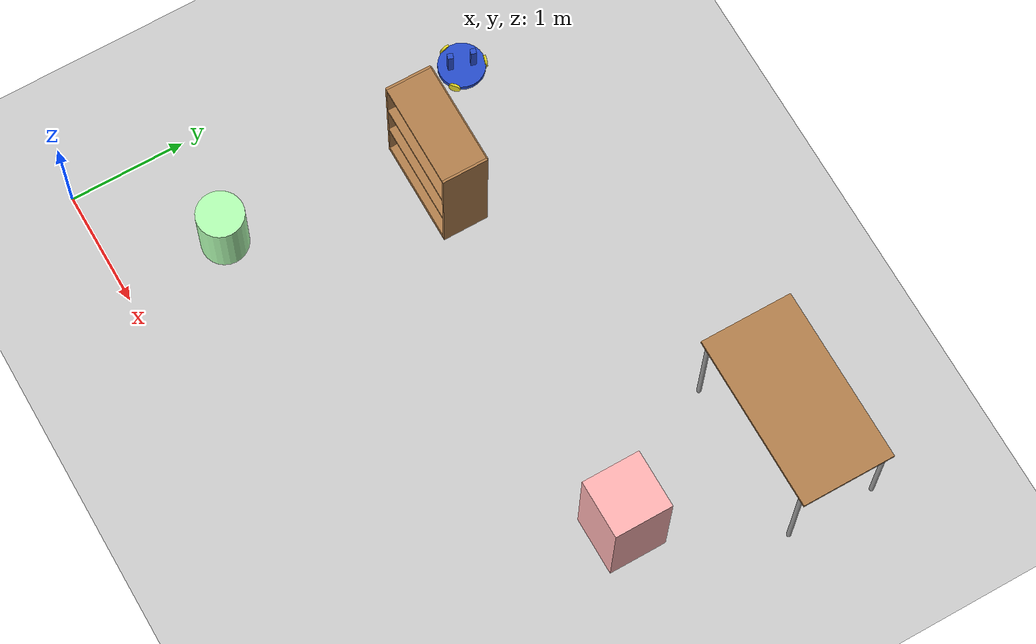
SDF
<sdf version="1.6">
 <world name="default">
  <model name="ground_plane">
   <static>1</static>
   <link name="link">
    <collision name="collision">
     <geometry><plane><normal>0 0 1</normal><size>100 100</size></plane></geometry>
     <surface><friction><ode><mu>100</mu><mu2>50</mu2></ode></friction></surface>
    </collision>
    <visual name="visual">
     <cast_shadows>0</cast_shadows>
     <geometry><plane><normal>0 0 1</normal><size>100 100</size></plane></geometry>
     <material>
      <script><uri>file://media/materials/scripts/gazebo.material</uri><name>Gazebo/Grey</name></script>
     </material>
    </visual>
   </link>
  </model>
  <model name="bookshelf">
   <static>1</static>
   <link name="link">
    <inertial><mass>1</mass></inertial>
    <collision name="back">
     <pose>0 0.005 0.6 0 -0 0</pose>
     <geometry><box><size>0.9 0.01 1.2</size></box></geometry>
    </collision>
    <visual name="visual1">
     <pose>0 0.005 0.6 0 -0 0</pose>
     <geometry><box><size>0.9 0.01 1.2</size></box></geometry>
     <material>
      <script><uri>file://media/materials/scripts/gazebo.material</uri><name>Gazebo/Wood</name></script>
     </material>
    </visual>
    <collision name="left_side">
     <pose>0.45 -0.195 0.6 0 -0 0</pose>
     <geometry><box><size>0.02 0.4 1.2</size></box></geometry>
    </collision>
    <visual name="visual2">
     <pose>0.45 -0.195 0.6 0 -0 0</pose>
     <geometry><box><size>0.02 0.4 1.2</size></box></geometry>
     <material>
      <script><uri>file://media/materials/scripts/gazebo.material</uri><name>Gazebo/Wood</name></script>
     </material>
    </visual>
    <collision name="right_side">
     <pose>-0.45 -0.195 0.6 0 -0 0</pose>
     <geometry><box><size>0.02 0.4 1.2</size></box></geometry>
    </collision>
    <visual name="visual3">
     <pose>-0.45 -0.195 0.6 0 -0 0</pose>
     <geometry><box><size>0.02 0.4 1.2</size></box></geometry>
     <material>
      <script><uri>file://media/materials/scripts/gazebo.material</uri><name>Gazebo/Wood</name></script>
     </material>
    </visual>
    <collision name="bottom">
     <pose>0 -0.195 0.03 0 -0 0</pose>
     <geometry><box><size>0.88 0.4 0.06</size></box></geometry>
    </collision>
    <visual name="visual4">
     <pose>0 -0.195 0.03 0 -0 0</pose>
     <geometry><box><size>0.88 0.4 0.06</size></box></geometry>
     <material>
      <script><uri>file://media/materials/scripts/gazebo.material</uri><name>Gazebo/Wood</name></script>
     </material>
    </visual>
    <collision name="top">
     <pose>0 -0.195 1.19 0 -0 0</pose>
     <geometry><box><size>0.88 0.4 0.02</size></box></geometry>
    </collision>
    <visual name="visual5">
     <pose>0 -0.195 1.19 0 -0 0</pose>
     <geometry><box><size>0.88 0.4 0.02</size></box></geometry>
     <material>
      <script><uri>file://media/materials/scripts/gazebo.material</uri><name>Gazebo/Wood</name></script>
     </material>
    </visual>
    <collision name="low_shelf">
     <pose>0 -0.195 0.43 0 -0 0</pose>
     <geometry><box><size>0.88 0.4 0.02</size></box></geometry>
    </collision>
    <visual name="visual6">
     <pose>0 -0.195 0.43 0 -0 0</pose>
     <geometry><box><size>0.88 0.4 0.02</size></box></geometry>
     <material>
      <script><uri>file://media/materials/scripts/gazebo.material</uri><name>Gazebo/Wood</name></script>
     </material>
    </visual>
    <collision name="high_shelf">
     <pose>0 -0.195 0.8 0 -0 0</pose>
     <geometry><box><size>0.88 0.4 0.02</size></box></geometry>
    </collision>
    <visual name="visual7">
     <pose>0 -0.195 0.8 0 -0 0</pose>
     <geometry><box><size>0.88 0.4 0.02</size></box></geometry>
     <material>
      <script><uri>file://media/materials/scripts/gazebo.material</uri><name>Gazebo/Wood</name></script>
     </material>
    </visual>
   </link>
   <pose>1.32856 2.84025 0 0 -0 0</pose>
  </model>
  <model name="table">
   <static>1</static>
   <link name="link">
    <collision name="surface">
     <pose>0 0 1 0 -0 0</pose>
     <geometry><box><size>1.5 0.8 0.03</size></box></geometry>
     <surface><friction><ode><mu>0.6</mu><mu2>0.6</mu2></ode></friction></surface>
    </collision>
    <visual name="visual1">
     <pose>0 0 1 0 -0 0</pose>
     <geometry><box><size>1.5 0.8 0.03</size></box></geometry>
     <material>
      <script><uri>file://media/materials/scripts/gazebo.material</uri><name>Gazebo/Wood</name></script>
     </material>
    </visual>
    <collision name="front_left_leg">
     <pose>0.68 0.38 0.5 0 -0 0</pose>
     <geometry><cylinder><radius>0.02</radius><length>1</length></cylinder></geometry>
    </collision>
    <visual name="front_left_leg">
     <pose>0.68 0.38 0.5 0 -0 0</pose>
     <geometry><cylinder><radius>0.02</radius><length>1</length></cylinder></geometry>
     <material>
      <script><uri>file://media/materials/scripts/gazebo.material</uri><name>Gazebo/Grey</name></script>
     </material>
    </visual>
    <collision name="front_right_leg">
     <pose>0.68 -0.38 0.5 0 -0 0</pose>
     <geometry><cylinder><radius>0.02</radius><length>1</length></cylinder></geometry>
    </collision>
    <visual name="front_right_leg">
     <pose>0.68 -0.38 0.5 0 -0 0</pose>
     <geometry><cylinder><radius>0.02</radius><length>1</length></cylinder></geometry>
     <material>
      <script><uri>file://media/materials/scripts/gazebo.material</uri><name>Gazebo/Grey</name></script>
     </material>
    </visual>
    <collision name="back_right_leg">
     <pose>-0.68 -0.38 0.5 0 -0 0</pose>
     <geometry><cylinder><radius>0.02</radius><length>1</length></cylinder></geometry>
    </collision>
    <visual name="back_right_leg">
     <pose>-0.68 -0.38 0.5 0 -0 0</pose>
     <geometry><cylinder><radius>0.02</radius><length>1</length></cylinder></geometry>
     <material>
      <script><uri>file://media/materials/scripts/gazebo.material</uri><name>Gazebo/Grey</name></script>
     </material>
    </visual>
    <collision name="back_left_leg">
     <pose>-0.68 0.38 0.5 0 -0 0</pose>
     <geometry><cylinder><radius>0.02</radius><length>1</length></cylinder></geometry>
    </collision>
    <visual name="back_left_leg">
     <pose>-0.68 0.38 0.5 0 -0 0</pose>
     <geometry><cylinder><radius>0.02</radius><length>1</length></cylinder></geometry>
     <material>
      <script><uri>file://media/materials/scripts/gazebo.material</uri><name>Gazebo/Grey</name></script>
     </material>
    </visual>
   </link>
   <pose>4.5763 3.95533 0 0 -0 0</pose>
  </model>
  <model name="unit_cylinder">
   <link name="link">
    <inertial>
     <mass>100</mass>
     <inertia><ixx>0.145833</ixx><ixy>0</ixy><ixz>0</ixz><iyy>0.145833</iyy><iyz>0</iyz><izz>0.125</izz></inertia>
    </inertial>
    <visual name="visual">
     <geometry><cylinder><radius>0.2</radius><length>0.6</length></cylinder></geometry>
     <material>
      <script><name>Gazebo/Grey</name><uri>file://media/materials/scripts/gazebo.material</uri></script>
      <shader type="pixel"><normal_map>__default__</normal_map></shader>
      <ambient>0.3 1 0.3 1</ambient>
      <diffuse>0.7 1 0.7 1</diffuse>
      <specular>0.01 1 0.01 1</specular>
      <emissive>0 1 0 1</emissive>
     </material>
    </visual>
    <collision name="collision">
     <geometry><cylinder><radius>0.2</radius><length>0.6</length></cylinder></geometry>
     <surface>
      <friction>
       <ode><mu>1</mu><mu2>1</mu2><fdir1>0 0 0</fdir1><slip1>0</slip1><slip2>0</slip2></ode>
       <torsional>
        <coefficient>1</coefficient>
        <patch_radius>0</patch_radius>
        <surface_radius>0</surface_radius>
        <use_patch_radius>1</use_patch_radius>
        <ode><slip>0</slip></ode>
       </torsional>
      </friction>
      <bounce><restitution_coefficient>0</restitution_coefficient><threshold>1e+06</threshold></bounce>
      <contact>
       <collide_without_contact>0</collide_without_contact>
       <collide_without_contact_bitmask>1</collide_without_contact_bitmask>
       <collide_bitmask>1</collide_bitmask>
       <ode>
        <soft_cfm>0</soft_cfm>
        <soft_erp>0.2</soft_erp>
        <kp>1e+13</kp>
        <kd>1</kd>
        <max_vel>0.01</max_vel>
        <min_depth>0</min_depth>
       </ode>
       <bullet>
        <split_impulse>1</split_impulse>
        <split_impulse_penetration_threshold>-0.01</split_impulse_penetration_threshold>
        <soft_cfm>0</soft_cfm>
        <soft_erp>0.2</soft_erp>
        <kp>1e+13</kp>
        <kd>1</kd>
       </bullet>
      </contact>
     </surface>
    </collision>
   </link>
   <static>0</static>
   <pose>0.932681 0.902167 0.299996 5e-06 4e-06 0.000649</pose>
  </model>
  <model name="unit_box">
   <link name="link">
    <inertial>
     <mass>100</mass>
     <inertia>
      <ixx>0.166667</ixx>
      <ixy>0</ixy>
      <ixz>0</ixz>
      <iyy>0.166667</iyy>
      <iyz>0</iyz>
      <izz>0.166667</izz>
     </inertia>
    </inertial>
    <visual name="visual">
     <geometry><box><size>0.5 0.5 1</size></box></geometry>
     <material>
      <script><name>Gazebo/Grey</name><uri>file://media/materials/scripts/gazebo.material</uri></script>
      <shader type="pixel"><normal_map>__default__</normal_map></shader>
      <ambient>1 0.3 0.3 1</ambient>
      <diffuse>1 0.7 0.7 1</diffuse>
      <specular>1 0.01 0.01 1</specular>
      <emissive>1 0 0 1</emissive>
     </material>
    </visual>
    <collision name="collision">
     <geometry><box><size>0.5 0.5 1</size></box></geometry>
     <surface>
      <friction>
       <ode><mu>1</mu><mu2>1</mu2><fdir1>0 0 0</fdir1><slip1>0</slip1><slip2>0</slip2></ode>
       <torsional>
        <coefficient>1</coefficient>
        <patch_radius>0</patch_radius>
        <surface_radius>0</surface_radius>
        <use_patch_radius>1</use_patch_radius>
        <ode><slip>0</slip></ode>
       </torsional>
      </friction>
      <bounce><restitution_coefficient>0</restitution_coefficient><threshold>1e+06</threshold></bounce>
      <contact>
       <collide_without_contact>0</collide_without_contact>
       <collide_without_contact_bitmask>1</collide_without_contact_bitmask>
       <collide_bitmask>1</collide_bitmask>
       <ode>
        <soft_cfm>0</soft_cfm>
        <soft_erp>0.2</soft_erp>
        <kp>1e+13</kp>
        <kd>1</kd>
        <max_vel>0.01</max_vel>
        <min_depth>0</min_depth>
       </ode>
       <bullet>
        <split_impulse>1</split_impulse>
        <split_impulse_penetration_threshold>-0.01</split_impulse_penetration_threshold>
        <soft_cfm>0</soft_cfm>
        <soft_erp>0.2</soft_erp>
        <kp>1e+13</kp>
        <kd>1</kd>
       </bullet>
      </contact>
     </surface>
    </collision>
   </link>
   <static>0</static>
   <pose>4.59139 2.45538 0.5 -6e-06 -0 0.003126</pose>
  </model>
  <model name="3wheelRobotChassis">
   <link name="link_0">
    <pose>-1e-06 0 -0.0625 0 -0 0</pose>
    <inertial>
     <mass>1</mass>
     <inertia><ixx>0.145833</ixx><ixy>0</ixy><ixz>0</ixz><iyy>0.145833</iyy><iyz>0</iyz><izz>0.125</izz></inertia>
    </inertial>
    <visual name="ModelPreview_0::link_0::visual_1">
     <pose>0 0.096 0.122 0 -0 0</pose>
     <geometry><box><size>0.048 0.048 0.244</size></box></geometry>
     <material>
      <lighting>1</lighting>
      <script><uri>file://media/materials/scripts/gazebo.material</uri><name>Gazebo/Blue</name></script>
      <shader type="pixel"><normal_map>__default__</normal_map></shader>
      <ambient>0.3 0.3 1 1</ambient>
      <diffuse>0.7 0.7 1 1</diffuse>
      <specular>0.01 0.01 1 1</specular>
      <emissive>0 0 0 1</emissive>
     </material>
    </visual>
    <visual name="visual">
     <geometry><cylinder><radius>0.2</radius><length>0.048</length></cylinder></geometry>
     <material>
      <lighting>1</lighting>
      <script><uri>file://media/materials/scripts/gazebo.material</uri><name>Gazebo/Blue</name></script>
      <shader type="pixel"><normal_map>__default__</normal_map></shader>
      <ambient>0.3 0.3 1 1</ambient>
      <diffuse>0.7 0.7 1 1</diffuse>
      <specular>0.01 0.01 1 1</specular>
      <emissive>0 0 0 1</emissive>
     </material>
    </visual>
    <visual name="ModelPreview_0::link_0::visual_2">
     <pose>0 -0.096 0.122 0 -0 0</pose>
     <geometry><box><size>0.048 0.048 0.244</size></box></geometry>
     <material>
      <lighting>1</lighting>
      <script><uri>file://media/materials/scripts/gazebo.material</uri><name>Gazebo/Blue</name></script>
      <shader type="pixel"><normal_map>__default__</normal_map></shader>
      <ambient>0.3 0.3 1 1</ambient>
      <diffuse>0.7 0.7 1 1</diffuse>
      <specular>0.01 0.01 1 1</specular>
      <emissive>0 0 0 1</emissive>
     </material>
    </visual>
    <collision name="collision_1">
     <pose>0 0.096 0.122 0 -0 0</pose>
     <geometry><box><size>0.048 0.048 0.244</size></box></geometry>
     <surface>
      <friction>
       <ode><mu>1</mu><mu2>1</mu2><fdir1>0 0 0</fdir1><slip1>0</slip1><slip2>0</slip2></ode>
       <torsional>
        <coefficient>1</coefficient>
        <patch_radius>0</patch_radius>
        <surface_radius>0</surface_radius>
        <use_patch_radius>1</use_patch_radius>
        <ode><slip>0</slip></ode>
       </torsional>
      </friction>
      <bounce><restitution_coefficient>0</restitution_coefficient><threshold>1e+06</threshold></bounce>
      <contact>
       <collide_without_contact>0</collide_without_contact>
       <collide_without_contact_bitmask>1</collide_without_contact_bitmask>
       <collide_bitmask>1</collide_bitmask>
       <ode>
        <soft_cfm>0</soft_cfm>
        <soft_erp>0.2</soft_erp>
        <kp>1e+13</kp>
        <kd>1</kd>
        <max_vel>0.01</max_vel>
        <min_depth>0</min_depth>
       </ode>
       <bullet>
        <split_impulse>1</split_impulse>
        <split_impulse_penetration_threshold>-0.01</split_impulse_penetration_threshold>
        <soft_cfm>0</soft_cfm>
        <soft_erp>0.2</soft_erp>
        <kp>1e+13</kp>
        <kd>1</kd>
       </bullet>
      </contact>
     </surface>
    </collision>
    <collision name="collision">
     <geometry><cylinder><radius>0.2</radius><length>0.048</length></cylinder></geometry>
     <surface>
      <friction>
       <ode><mu>1</mu><mu2>1</mu2><fdir1>0 0 0</fdir1><slip1>0</slip1><slip2>0</slip2></ode>
       <torsional>
        <coefficient>1</coefficient>
        <patch_radius>0</patch_radius>
        <surface_radius>0</surface_radius>
        <use_patch_radius>1</use_patch_radius>
        <ode><slip>0</slip></ode>
       </torsional>
      </friction>
      <bounce><restitution_coefficient>0</restitution_coefficient><threshold>1e+06</threshold></bounce>
      <contact>
       <collide_without_contact>0</collide_without_contact>
       <collide_without_contact_bitmask>1</collide_without_contact_bitmask>
       <collide_bitmask>1</collide_bitmask>
       <ode>
        <soft_cfm>0</soft_cfm>
        <soft_erp>0.2</soft_erp>
        <kp>1e+13</kp>
        <kd>1</kd>
        <max_vel>0.01</max_vel>
        <min_depth>0</min_depth>
       </ode>
       <bullet>
        <split_impulse>1</split_impulse>
        <split_impulse_penetration_threshold>-0.01</split_impulse_penetration_threshold>
        <soft_cfm>0</soft_cfm>
        <soft_erp>0.2</soft_erp>
        <kp>1e+13</kp>
        <kd>1</kd>
       </bullet>
      </contact>
     </surface>
    </collision>
    <collision name="collision_2">
     <pose>0 -0.096 0.122 0 -0 0</pose>
     <geometry><box><size>0.048 0.048 0.244</size></box></geometry>
     <surface>
      <friction>
       <ode><mu>1</mu><mu2>1</mu2><fdir1>0 0 0</fdir1><slip1>0</slip1><slip2>0</slip2></ode>
       <torsional>
        <coefficient>1</coefficient>
        <patch_radius>0</patch_radius>
        <surface_radius>0</surface_radius>
        <use_patch_radius>1</use_patch_radius>
        <ode><slip>0</slip></ode>
       </torsional>
      </friction>
      <bounce><restitution_coefficient>0</restitution_coefficient><threshold>1e+06</threshold></bounce>
      <contact>
       <collide_without_contact>0</collide_without_contact>
       <collide_without_contact_bitmask>1</collide_without_contact_bitmask>
       <collide_bitmask>1</collide_bitmask>
       <ode>
        <soft_cfm>0</soft_cfm>
        <soft_erp>0.2</soft_erp>
        <kp>1e+13</kp>
        <kd>1</kd>
        <max_vel>0.01</max_vel>
        <min_depth>0</min_depth>
       </ode>
       <bullet>
        <split_impulse>1</split_impulse>
        <split_impulse_penetration_threshold>-0.01</split_impulse_penetration_threshold>
        <soft_cfm>0</soft_cfm>
        <soft_erp>0.2</soft_erp>
        <kp>1e+13</kp>
        <kd>1</kd>
       </bullet>
      </contact>
     </surface>
    </collision>
   </link>
   <link name="link_1">
    <pose>-1e-06 0.2 -0.0625 1.5707 -0 0</pose>
    <inertial>
     <mass>1</mass>
     <inertia><ixx>0.145833</ixx><ixy>0</ixy><ixz>0</ixz><iyy>0.145833</iyy><iyz>0</iyz><izz>0.125</izz></inertia>
    </inertial>
    <visual name="visual">
     <geometry><cylinder><radius>0.05</radius><length>0.02</length></cylinder></geometry>
     <material>
      <lighting>1</lighting>
      <script><uri>file://media/materials/scripts/gazebo.material</uri><name>Gazebo/Yellow</name></script>
      <shader type="pixel"><normal_map>__default__</normal_map></shader>
      <ambient>1 1 0.3 1</ambient>
      <diffuse>0.7 0.7 0.7 1</diffuse>
      <specular>0.01 0.01 0.01 1</specular>
      <emissive>0 0 0 1</emissive>
     </material>
    </visual>
    <collision name="collision">
     <geometry><cylinder><radius>0.05</radius><length>0.02</length></cylinder></geometry>
     <surface>
      <friction>
       <ode><mu>1</mu><mu2>1</mu2><fdir1>0 0 0</fdir1><slip1>0</slip1><slip2>0</slip2></ode>
       <torsional>
        <coefficient>1</coefficient>
        <patch_radius>0</patch_radius>
        <surface_radius>0</surface_radius>
        <use_patch_radius>1</use_patch_radius>
        <ode><slip>0</slip></ode>
       </torsional>
      </friction>
      <bounce><restitution_coefficient>0</restitution_coefficient><threshold>1e+06</threshold></bounce>
      <contact>
       <collide_without_contact>0</collide_without_contact>
       <collide_without_contact_bitmask>1</collide_without_contact_bitmask>
       <collide_bitmask>1</collide_bitmask>
       <ode>
        <soft_cfm>0</soft_cfm>
        <soft_erp>0.2</soft_erp>
        <kp>1e+13</kp>
        <kd>1</kd>
        <max_vel>0.01</max_vel>
        <min_depth>0</min_depth>
       </ode>
       <bullet>
        <split_impulse>1</split_impulse>
        <split_impulse_penetration_threshold>-0.01</split_impulse_penetration_threshold>
        <soft_cfm>0</soft_cfm>
        <soft_erp>0.2</soft_erp>
        <kp>1e+13</kp>
        <kd>1</kd>
       </bullet>
      </contact>
     </surface>
    </collision>
   </link>
   <link name="link_1_clone">
    <pose>-0.173206 -0.1 -0.0625 1.5707 -0 2.0944</pose>
    <inertial>
     <mass>1</mass>
     <inertia><ixx>0.145833</ixx><ixy>0</ixy><ixz>0</ixz><iyy>0.145833</iyy><iyz>0</iyz><izz>0.125</izz></inertia>
    </inertial>
    <visual name="visual">
     <geometry><cylinder><radius>0.05</radius><length>0.02</length></cylinder></geometry>
     <material>
      <lighting>1</lighting>
      <script><uri>file://media/materials/scripts/gazebo.material</uri><name>Gazebo/Yellow</name></script>
      <shader type="pixel"><normal_map>__default__</normal_map></shader>
      <ambient>1 1 0.3 1</ambient>
      <diffuse>0.7 0.7 0.7 1</diffuse>
      <specular>0.01 0.01 0.01 1</specular>
      <emissive>0 0 0 1</emissive>
     </material>
    </visual>
    <collision name="collision">
     <geometry><cylinder><radius>0.05</radius><length>0.02</length></cylinder></geometry>
     <surface>
      <friction>
       <ode><mu>1</mu><mu2>1</mu2><fdir1>0 0 0</fdir1><slip1>0</slip1><slip2>0</slip2></ode>
       <torsional>
        <coefficient>1</coefficient>
        <patch_radius>0</patch_radius>
        <surface_radius>0</surface_radius>
        <use_patch_radius>1</use_patch_radius>
        <ode><slip>0</slip></ode>
       </torsional>
      </friction>
      <bounce><restitution_coefficient>0</restitution_coefficient><threshold>1e+06</threshold></bounce>
      <contact>
       <collide_without_contact>0</collide_without_contact>
       <collide_without_contact_bitmask>1</collide_without_contact_bitmask>
       <collide_bitmask>1</collide_bitmask>
       <ode>
        <soft_cfm>0</soft_cfm>
        <soft_erp>0.2</soft_erp>
        <kp>1e+13</kp>
        <kd>1</kd>
        <max_vel>0.01</max_vel>
        <min_depth>0</min_depth>
       </ode>
       <bullet>
        <split_impulse>1</split_impulse>
        <split_impulse_penetration_threshold>-0.01</split_impulse_penetration_threshold>
        <soft_cfm>0</soft_cfm>
        <soft_erp>0.2</soft_erp>
        <kp>1e+13</kp>
        <kd>1</kd>
       </bullet>
      </contact>
     </surface>
    </collision>
   </link>
   <link name="link_1_clone_0">
    <pose>0.173204 -0.1 -0.0625 1.5707 -0 -2.0944</pose>
    <inertial>
     <mass>1</mass>
     <inertia><ixx>0.145833</ixx><ixy>0</ixy><ixz>0</ixz><iyy>0.145833</iyy><iyz>0</iyz><izz>0.125</izz></inertia>
    </inertial>
    <visual name="visual">
     <geometry><cylinder><radius>0.05</radius><length>0.02</length></cylinder></geometry>
     <material>
      <lighting>1</lighting>
      <script><uri>file://media/materials/scripts/gazebo.material</uri><name>Gazebo/Yellow</name></script>
      <shader type="pixel"><normal_map>__default__</normal_map></shader>
      <ambient>1 1 0.3 1</ambient>
      <diffuse>0.7 0.7 0.7 1</diffuse>
      <specular>0.01 0.01 0.01 1</specular>
      <emissive>0 0 0 1</emissive>
     </material>
    </visual>
    <collision name="collision">
     <geometry><cylinder><radius>0.05</radius><length>0.02</length></cylinder></geometry>
     <surface>
      <friction>
       <ode><mu>1</mu><mu2>1</mu2><fdir1>0 0 0</fdir1><slip1>0</slip1><slip2>0</slip2></ode>
       <torsional>
        <coefficient>1</coefficient>
        <patch_radius>0</patch_radius>
        <surface_radius>0</surface_radius>
        <use_patch_radius>1</use_patch_radius>
        <ode><slip>0</slip></ode>
       </torsional>
      </friction>
      <bounce><restitution_coefficient>0</restitution_coefficient><threshold>1e+06</threshold></bounce>
      <contact>
       <collide_without_contact>0</collide_without_contact>
       <collide_without_contact_bitmask>1</collide_without_contact_bitmask>
       <collide_bitmask>1</collide_bitmask>
       <ode>
        <soft_cfm>0</soft_cfm>
        <soft_erp>0.2</soft_erp>
        <kp>1e+13</kp>
        <kd>1</kd>
        <max_vel>0.01</max_vel>
        <min_depth>0</min_depth>
       </ode>
       <bullet>
        <split_impulse>1</split_impulse>
        <split_impulse_penetration_threshold>-0.01</split_impulse_penetration_threshold>
        <soft_cfm>0</soft_cfm>
        <soft_erp>0.2</soft_erp>
        <kp>1e+13</kp>
        <kd>1</kd>
       </bullet>
      </contact>
     </surface>
    </collision>
   </link>
   <joint name="link_0_JOINT_0_0" type="revolute">
    <parent>link_0</parent>
    <child>link_1_clone_0</child>
    <axis>
     <xyz>1 0 0</xyz>
     <use_parent_model_frame>0</use_parent_model_frame>
     <limit>
      <lower>-1.79769e+308</lower>
      <upper>1.79769e+308</upper>
      <effort>-1</effort>
      <velocity>-1</velocity>
     </limit>
     <dynamics>
      <spring_reference>0</spring_reference>
      <spring_stiffness>0</spring_stiffness>
      <damping>0</damping>
     </dynamics>
    </axis>
    <physics>
     <ode><limit><cfm>0</cfm><erp>0.2</erp></limit><suspension><cfm>0</cfm><erp>0.2</erp></suspension></ode>
    </physics>
   </joint>
   <joint name="link_0_JOINT_0" type="revolute">
    <parent>link_0</parent>
    <child>link_1</child>
    <axis>
     <xyz>0 0 1</xyz>
     <use_parent_model_frame>0</use_parent_model_frame>
     <limit>
      <lower>-1.79769e+308</lower>
      <upper>1.79769e+308</upper>
      <effort>-1</effort>
      <velocity>-1</velocity>
     </limit>
     <dynamics>
      <spring_reference>0</spring_reference>
      <spring_stiffness>0</spring_stiffness>
      <damping>0</damping>
      <friction>0</friction>
     </dynamics>
    </axis>
    <physics>
     <ode><limit><cfm>0</cfm><erp>0.2</erp></limit><suspension><cfm>0</cfm><erp>0.2</erp></suspension></ode>
    </physics>
   </joint>
   <joint name="link_0_JOINT_1" type="revolute">
    <parent>link_0</parent>
    <child>link_1_clone</child>
    <axis>
     <xyz>0 0 1</xyz>
     <use_parent_model_frame>0</use_parent_model_frame>
     <limit>
      <lower>-1.79769e+308</lower>
      <upper>1.79769e+308</upper>
      <effort>-1</effort>
      <velocity>-1</velocity>
     </limit>
     <dynamics>
      <spring_reference>0</spring_reference>
      <spring_stiffness>0</spring_stiffness>
      <damping>0</damping>
      <friction>0</friction>
     </dynamics>
    </axis>
    <physics>
     <ode><limit><cfm>0</cfm><erp>0.2</erp></limit><suspension><cfm>0</cfm><erp>0.2</erp></suspension></ode>
    </physics>
   </joint>
   <static>0</static>
   <pose>0.539026 3.31201 0.112501 1e-06 2e-06 -0.2817</pose>
  </model>
 </world>
</sdf>
